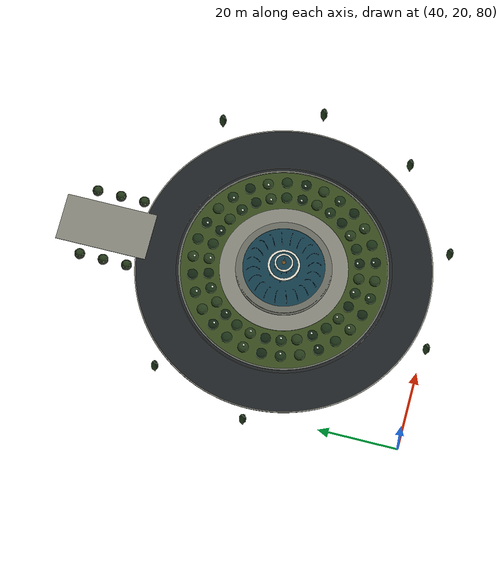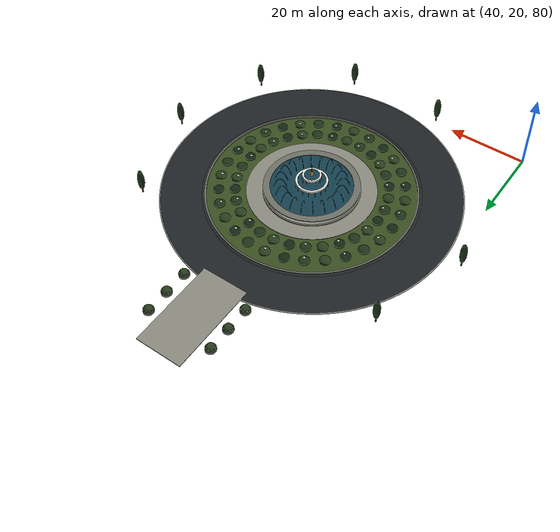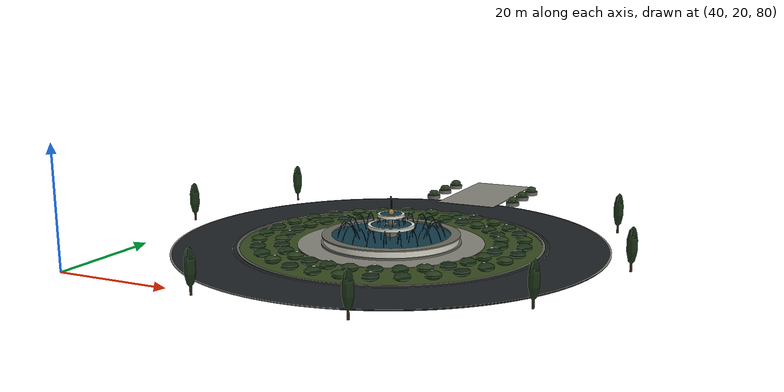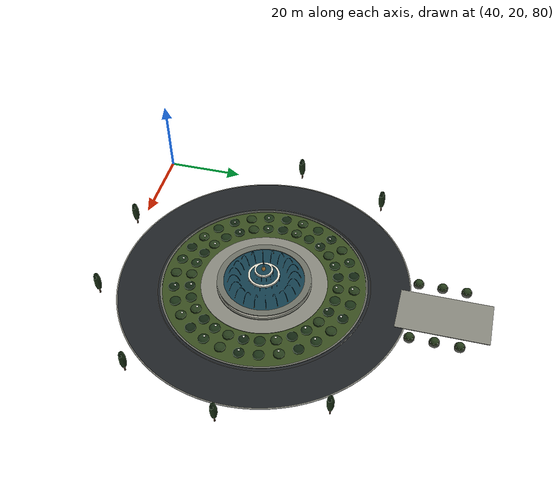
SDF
<?xml version='1.0' encoding='utf-8'?>
<sdf version="1.9">
  <model name="estate_arrival">
    <static>true</static>
    <link name="structure">
      <visual name="visual_asphalt">
        <geometry>
          <mesh>
            <uri>model://estate_arrival/meshes/visual/asphalt.dae</uri>
          </mesh>
        </geometry>
        <material>
          <ambient>0.12 0.135 0.145 1</ambient>
          <diffuse>0.12 0.135 0.145 1</diffuse>
          <specular>0.15 0.15 0.15 1</specular>
          <pbr>
            <metal>
              <roughness>0.8</roughness>
              <metalness>0.0</metalness>
            </metal>
          </pbr>
        </material>
      </visual>
      <visual name="visual_stone">
        <geometry>
          <mesh>
            <uri>model://estate_arrival/meshes/visual/stone.dae</uri>
          </mesh>
        </geometry>
        <material>
          <ambient>0.42 0.43 0.39 1</ambient>
          <diffuse>0.42 0.43 0.39 1</diffuse>
          <specular>0.15 0.15 0.15 1</specular>
          <pbr>
            <metal>
              <roughness>0.8</roughness>
              <metalness>0.0</metalness>
            </metal>
          </pbr>
        </material>
      </visual>
      <visual name="visual_paving">
        <geometry>
          <mesh>
            <uri>model://estate_arrival/meshes/visual/paving.dae</uri>
          </mesh>
        </geometry>
        <material>
          <ambient>0.53 0.53 0.49 1</ambient>
          <diffuse>0.53 0.53 0.49 1</diffuse>
          <specular>0.15 0.15 0.15 1</specular>
          <pbr>
            <metal>
              <roughness>0.8</roughness>
              <metalness>0.0</metalness>
            </metal>
          </pbr>
        </material>
      </visual>
      <visual name="visual_ivory">
        <geometry>
          <mesh>
            <uri>model://estate_arrival/meshes/visual/ivory.dae</uri>
          </mesh>
        </geometry>
        <material>
          <ambient>0.88 0.87 0.81 1</ambient>
          <diffuse>0.88 0.87 0.81 1</diffuse>
          <specular>0.15 0.15 0.15 1</specular>
          <pbr>
            <metal>
              <roughness>0.8</roughness>
              <metalness>0.0</metalness>
            </metal>
          </pbr>
        </material>
      </visual>
      <visual name="visual_trunk">
        <geometry>
          <mesh>
            <uri>model://estate_arrival/meshes/visual/trunk.dae</uri>
          </mesh>
        </geometry>
        <material>
          <ambient>0.19 0.12 0.072 1</ambient>
          <diffuse>0.19 0.12 0.072 1</diffuse>
          <specular>0.15 0.15 0.15 1</specular>
          <pbr>
            <metal>
              <roughness>0.8</roughness>
              <metalness>0.0</metalness>
            </metal>
          </pbr>
        </material>
      </visual>
      <visual name="visual_brass">
        <geometry>
          <mesh>
            <uri>model://estate_arrival/meshes/visual/brass.dae</uri>
          </mesh>
        </geometry>
        <material>
          <ambient>0.68 0.48 0.22 1</ambient>
          <diffuse>0.68 0.48 0.22 1</diffuse>
          <specular>0.15 0.15 0.15 1</specular>
          <pbr>
            <metal>
              <roughness>0.35</roughness>
              <metalness>0.65</metalness>
            </metal>
          </pbr>
        </material>
      </visual>
      <visual name="visual_grass">
        <geometry>
          <mesh>
            <uri>model://estate_arrival/meshes/visual/grass.dae</uri>
          </mesh>
        </geometry>
        <material>
          <ambient>0.22 0.3 0.12 1</ambient>
          <diffuse>0.22 0.3 0.12 1</diffuse>
          <specular>0.15 0.15 0.15 1</specular>
          <pbr>
            <metal>
              <roughness>0.8</roughness>
              <metalness>0.0</metalness>
            </metal>
          </pbr>
        </material>
      </visual>
      <visual name="visual_grass_dark">
        <geometry>
          <mesh>
            <uri>model://estate_arrival/meshes/visual/grass_dark.dae</uri>
          </mesh>
        </geometry>
        <material>
          <ambient>0.14 0.22 0.085 1</ambient>
          <diffuse>0.14 0.22 0.085 1</diffuse>
          <specular>0.15 0.15 0.15 1</specular>
          <pbr>
            <metal>
              <roughness>0.8</roughness>
              <metalness>0.0</metalness>
            </metal>
          </pbr>
        </material>
      </visual>
      <visual name="visual_leaf0">
        <geometry>
          <mesh>
            <uri>model://estate_arrival/meshes/visual/leaf0.dae</uri>
          </mesh>
        </geometry>
        <material>
          <ambient>0.072 0.145 0.065 1</ambient>
          <diffuse>0.072 0.145 0.065 1</diffuse>
          <specular>0.15 0.15 0.15 1</specular>
          <pbr>
            <metal>
              <roughness>0.8</roughness>
              <metalness>0.0</metalness>
            </metal>
          </pbr>
        </material>
      </visual>
      <visual name="visual_leaf1">
        <geometry>
          <mesh>
            <uri>model://estate_arrival/meshes/visual/leaf1.dae</uri>
          </mesh>
        </geometry>
        <material>
          <ambient>0.105 0.195 0.085 1</ambient>
          <diffuse>0.105 0.195 0.085 1</diffuse>
          <specular>0.15 0.15 0.15 1</specular>
          <pbr>
            <metal>
              <roughness>0.8</roughness>
              <metalness>0.0</metalness>
            </metal>
          </pbr>
        </material>
      </visual>
      <visual name="visual_leaf2">
        <geometry>
          <mesh>
            <uri>model://estate_arrival/meshes/visual/leaf2.dae</uri>
          </mesh>
        </geometry>
        <material>
          <ambient>0.15 0.235 0.105 1</ambient>
          <diffuse>0.15 0.235 0.105 1</diffuse>
          <specular>0.15 0.15 0.15 1</specular>
          <pbr>
            <metal>
              <roughness>0.8</roughness>
              <metalness>0.0</metalness>
            </metal>
          </pbr>
        </material>
      </visual>
      <visual name="visual_water">
        <geometry>
          <mesh>
            <uri>model://estate_arrival/meshes/visual/water.dae</uri>
          </mesh>
        </geometry>
        <material>
          <ambient>0.075 0.24 0.3 1</ambient>
          <diffuse>0.075 0.24 0.3 1</diffuse>
          <specular>0.15 0.15 0.15 1</specular>
          <pbr>
            <metal>
              <roughness>0.16</roughness>
              <metalness>0.0</metalness>
            </metal>
          </pbr>
        </material>
      </visual>
      <visual name="visual_white">
        <geometry>
          <mesh>
            <uri>model://estate_arrival/meshes/visual/white.dae</uri>
          </mesh>
        </geometry>
        <material>
          <ambient>0.93 0.93 0.89 1</ambient>
          <diffuse>0.93 0.93 0.89 1</diffuse>
          <specular>0.15 0.15 0.15 1</specular>
          <pbr>
            <metal>
              <roughness>0.8</roughness>
              <metalness>0.0</metalness>
            </metal>
          </pbr>
        </material>
      </visual>
      <collision name="arrival_drive">
        <geometry>
          <mesh>
            <uri>model://estate_arrival/meshes/collision/arrival_drive.dae</uri>
          </mesh>
        </geometry>
      </collision>
      <collision name="inner_drive_curb">
        <geometry>
          <mesh>
            <uri>model://estate_arrival/meshes/collision/inner_drive_curb.dae</uri>
          </mesh>
        </geometry>
      </collision>
      <collision name="fountain_walk">
        <geometry>
          <mesh>
            <uri>model://estate_arrival/meshes/collision/fountain_walk.dae</uri>
          </mesh>
        </geometry>
      </collision>
      <collision name="fountain_base">
        <geometry>
          <cylinder>
            <radius>12</radius>
            <length>0.48</length>
          </cylinder>
        </geometry>
        <pose>78 58 80.24 0 0 0</pose>
      </collision>
      <collision name="fountain_basin">
        <geometry>
          <mesh>
            <uri>model://estate_arrival/meshes/collision/fountain_basin.dae</uri>
          </mesh>
        </geometry>
      </collision>
      <collision name="fountain_coping">
        <geometry>
          <mesh>
            <uri>model://estate_arrival/meshes/collision/fountain_coping.dae</uri>
          </mesh>
        </geometry>
      </collision>
      <collision name="fountain_pedestal">
        <geometry>
          <cylinder>
            <radius>1.05</radius>
            <length>3.2</length>
          </cylinder>
        </geometry>
        <pose>78 58 81.85 0 0 0</pose>
      </collision>
      <collision name="fountain_middle_bowl">
        <geometry>
          <mesh>
            <uri>model://estate_arrival/meshes/collision/fountain_middle_bowl.dae</uri>
          </mesh>
        </geometry>
      </collision>
      <collision name="fountain_middle_floor">
        <geometry>
          <cylinder>
            <radius>3.95</radius>
            <length>0.18</length>
          </cylinder>
        </geometry>
        <pose>78 58 82.89 0 0 0</pose>
      </collision>
      <collision name="fountain_upper_stem">
        <geometry>
          <cylinder>
            <radius>0.56</radius>
            <length>2.0</length>
          </cylinder>
        </geometry>
        <pose>78 58 83.95 0 0 0</pose>
      </collision>
      <collision name="fountain_upper_bowl">
        <geometry>
          <mesh>
            <uri>model://estate_arrival/meshes/collision/fountain_upper_bowl.dae</uri>
          </mesh>
        </geometry>
      </collision>
      <collision name="fountain_upper_floor">
        <geometry>
          <cylinder>
            <radius>2.3</radius>
            <length>0.18</length>
          </cylinder>
        </geometry>
        <pose>78 58 84.78 0 0 0</pose>
      </collision>
      <collision name="arrival_cypress_0_trunk">
        <geometry>
          <cylinder>
            <radius>0.2</radius>
            <length>3.5</length>
          </cylinder>
        </geometry>
        <pose>119 58 81.75 0 0 0</pose>
      </collision>
      <collision name="arrival_cypress_1_trunk">
        <geometry>
          <cylinder>
            <radius>0.2</radius>
            <length>3.5</length>
          </cylinder>
        </geometry>
        <pose>111.17 82.0992 81.75 0 0 0</pose>
      </collision>
      <collision name="arrival_cypress_4_trunk">
        <geometry>
          <cylinder>
            <radius>0.2</radius>
            <length>3.5</length>
          </cylinder>
        </geometry>
        <pose>44.8303 82.0992 81.75 0 0 0</pose>
      </collision>
      <collision name="arrival_cypress_5_trunk">
        <geometry>
          <cylinder>
            <radius>0.2</radius>
            <length>3.5</length>
          </cylinder>
        </geometry>
        <pose>37 58 81.75 0 0 0</pose>
      </collision>
      <collision name="arrival_cypress_7_trunk">
        <geometry>
          <cylinder>
            <radius>0.2</radius>
            <length>3.5</length>
          </cylinder>
        </geometry>
        <pose>65.3303 19.0067 81.75 0 0 0</pose>
      </collision>
      <collision name="arrival_cypress_8_trunk">
        <geometry>
          <cylinder>
            <radius>0.2</radius>
            <length>3.5</length>
          </cylinder>
        </geometry>
        <pose>90.6697 19.0067 81.75 0 0 0</pose>
      </collision>
      <collision name="arrival_cypress_9_trunk">
        <geometry>
          <cylinder>
            <radius>0.2</radius>
            <length>3.5</length>
          </cylinder>
        </geometry>
        <pose>111.17 33.9008 81.75 0 0 0</pose>
      </collision>
      <collision name="villa_entry_walk">
        <geometry>
          <box>
            <size>12 23 0.2</size>
          </box>
        </geometry>
        <pose>78 103.5 80.1 0 0 0</pose>
      </collision>
      <collision name="entry_walk_planter_-1_0">
        <geometry>
          <cylinder>
            <radius>1.3</radius>
            <length>0.72</length>
          </cylinder>
        </geometry>
        <pose>69.4 96 80.36 0 0 0</pose>
      </collision>
      <collision name="entry_walk_planter_-1_1">
        <geometry>
          <cylinder>
            <radius>1.3</radius>
            <length>0.72</length>
          </cylinder>
        </geometry>
        <pose>69.4 102 80.36 0 0 0</pose>
      </collision>
      <collision name="entry_walk_planter_-1_2">
        <geometry>
          <cylinder>
            <radius>1.3</radius>
            <length>0.72</length>
          </cylinder>
        </geometry>
        <pose>69.4 108 80.36 0 0 0</pose>
      </collision>
      <collision name="entry_walk_planter_1_0">
        <geometry>
          <cylinder>
            <radius>1.3</radius>
            <length>0.72</length>
          </cylinder>
        </geometry>
        <pose>86.6 96 80.36 0 0 0</pose>
      </collision>
      <collision name="entry_walk_planter_1_1">
        <geometry>
          <cylinder>
            <radius>1.3</radius>
            <length>0.72</length>
          </cylinder>
        </geometry>
        <pose>86.6 102 80.36 0 0 0</pose>
      </collision>
      <collision name="entry_walk_planter_1_2">
        <geometry>
          <cylinder>
            <radius>1.3</radius>
            <length>0.72</length>
          </cylinder>
        </geometry>
        <pose>86.6 108 80.36 0 0 0</pose>
      </collision>
    </link>
  </model>
</sdf>
